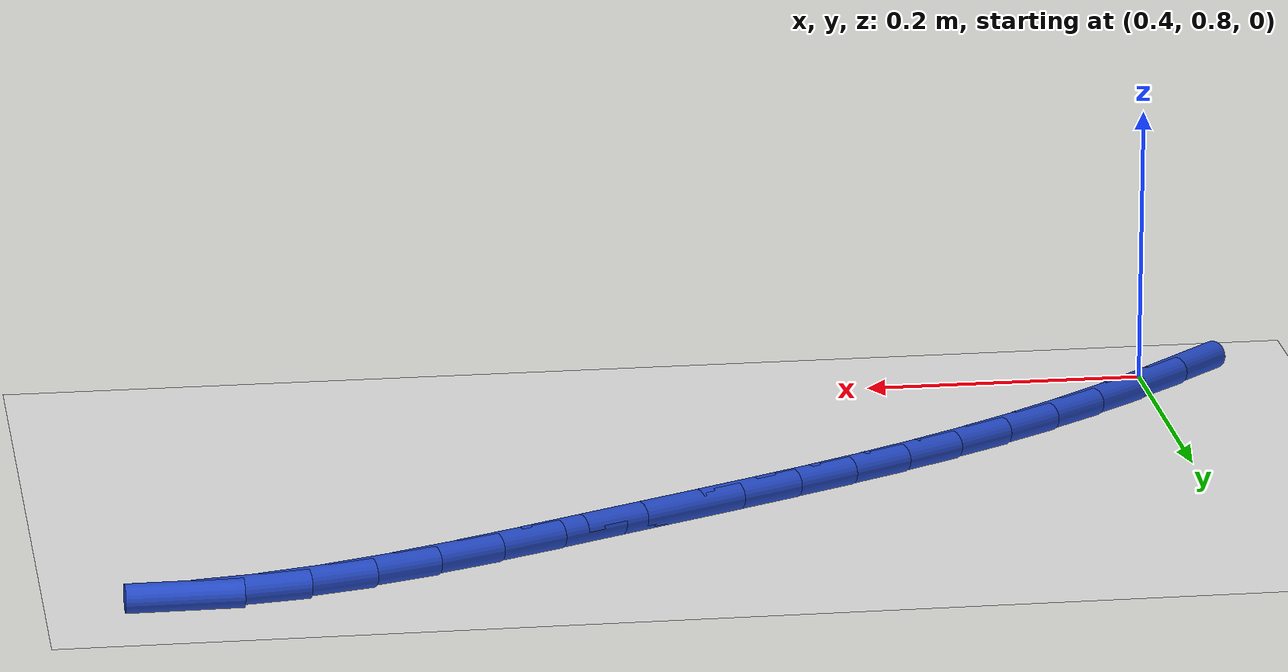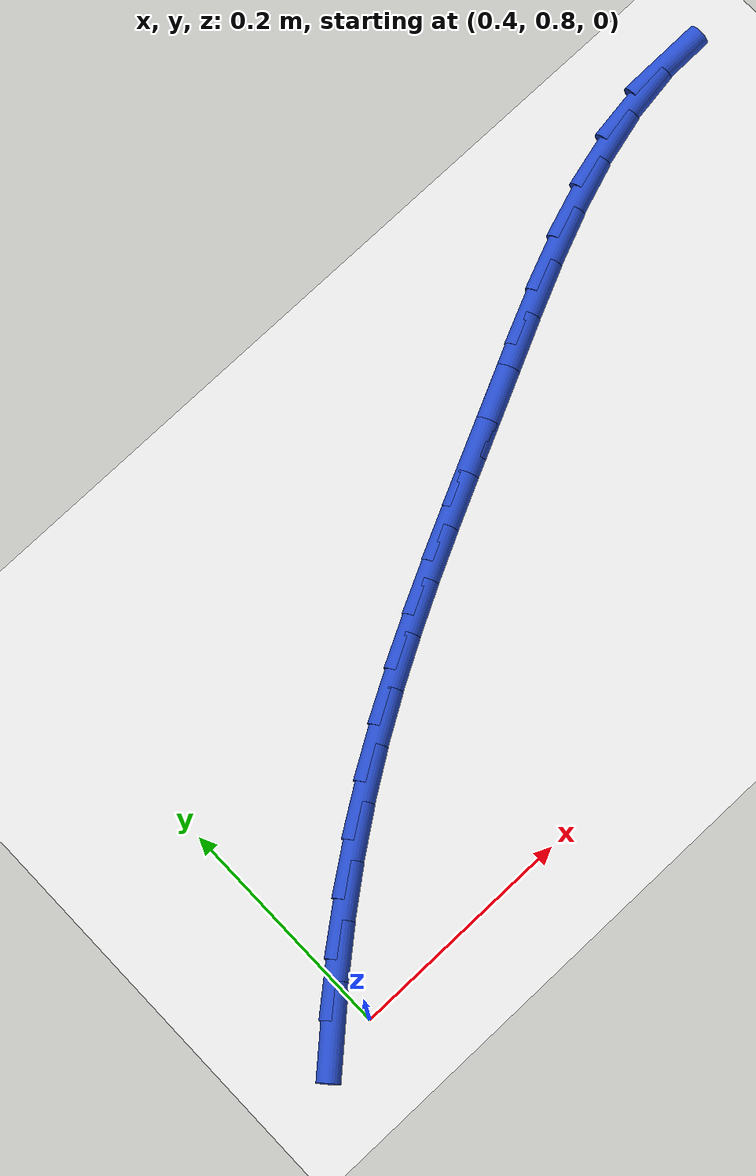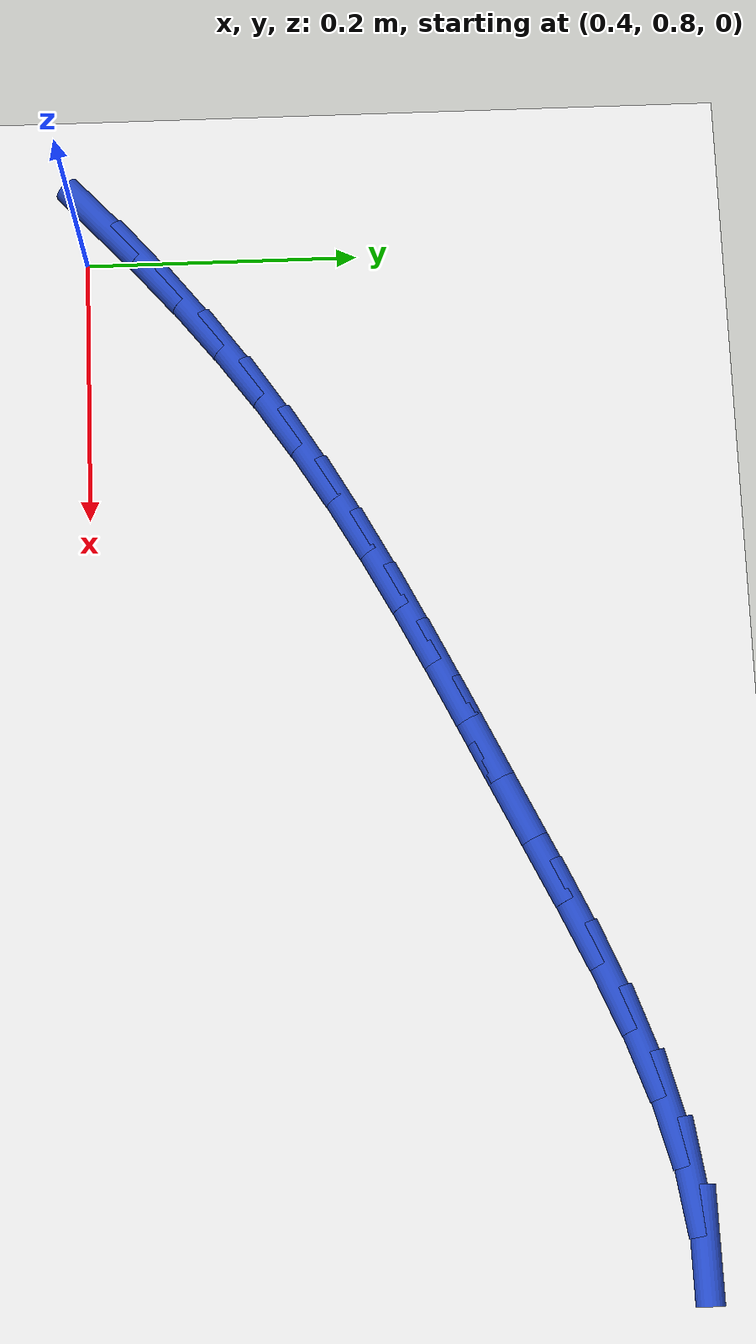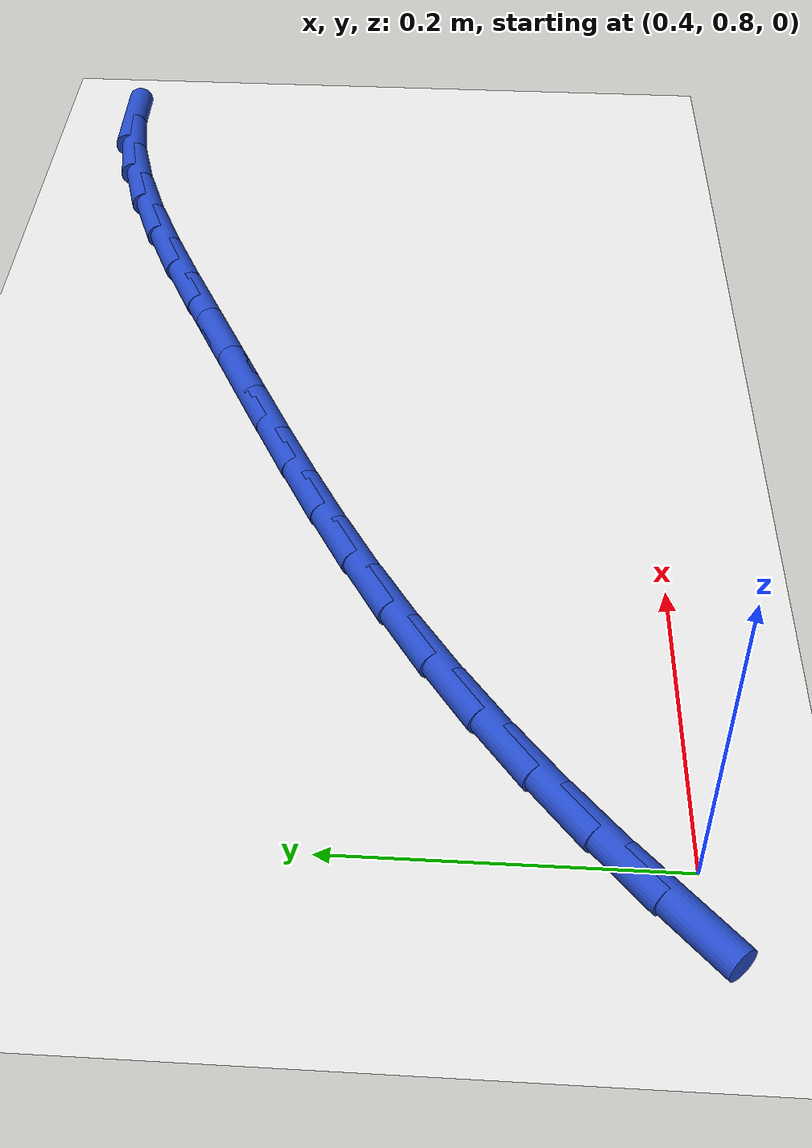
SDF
<sdf version="1.6">
 <world name="default">
  <model name="ground_plane">
   <static>1</static>
   <link name="link">
    <collision name="collision">
     <geometry><plane><normal>0 0 1</normal><size>100 100</size></plane></geometry>
     <surface><friction><ode><mu>100</mu><mu2>50</mu2></ode></friction></surface>
    </collision>
    <visual name="visual">
     <cast_shadows>0</cast_shadows>
     <geometry><plane><normal>0 0 1</normal><size>100 100</size></plane></geometry>
     <material>
      <script><uri>file://media/materials/scripts/gazebo.material</uri><name>Gazebo/WhiteGlow</name></script>
     </material>
    </visual>
   </link>
  </model>
  <model name="line">
   <link name="link_19">
    <pose>0.37127581497059814 0.8124996328618164 0.01 0 1.57 0.7407750922744352</pose>
    <collision name="collision">
     <geometry><cylinder><radius>0.01</radius><length>0.08</length></cylinder></geometry>
    </collision>
    <visual name="visual">
     <material>
      <script><name>Gazebo/Blue</name><uri>file://media/materials/scripts/gazebo.material</uri></script>
     </material>
     <geometry><cylinder><radius>0.01</radius><length>0.08</length></cylinder></geometry>
    </visual>
   </link>
   <link name="link_20">
    <pose>0.40690317219990163 0.8450812733057942 0.01 0 1.57 0.7024940433238107</pose>
    <collision name="collision">
     <geometry><cylinder><radius>0.01</radius><length>0.08</length></cylinder></geometry>
    </collision>
    <visual name="visual">
     <material>
      <script><name>Gazebo/Blue</name><uri>file://media/materials/scripts/gazebo.material</uri></script>
     </material>
     <geometry><cylinder><radius>0.01</radius><length>0.08</length></cylinder></geometry>
    </visual>
   </link>
   <link name="link_21">
    <pose>0.4436147355936613 0.8761598440046221 0.01 0 1.57 0.6638766824531006</pose>
    <collision name="collision">
     <geometry><cylinder><radius>0.01</radius><length>0.08</length></cylinder></geometry>
    </collision>
    <visual name="visual">
     <material>
      <script><name>Gazebo/Blue</name><uri>file://media/materials/scripts/gazebo.material</uri></script>
     </material>
     <geometry><cylinder><radius>0.01</radius><length>0.08</length></cylinder></geometry>
    </visual>
   </link>
   <link name="link_22">
    <pose>0.48133294424189677 0.9056681356951632 0.01 0 1.57 0.6247852604363164</pose>
    <collision name="collision">
     <geometry><cylinder><radius>0.01</radius><length>0.08</length></cylinder></geometry>
    </collision>
    <visual name="visual">
     <material>
      <script><name>Gazebo/Blue</name><uri>file://media/materials/scripts/gazebo.material</uri></script>
     </material>
     <geometry><cylinder><radius>0.01</radius><length>0.08</length></cylinder></geometry>
    </visual>
   </link>
   <link name="link_23">
    <pose>0.5199802372346274 0.933538939114281 0.01 0 1.57 0.5850797112424139</pose>
    <collision name="collision">
     <geometry><cylinder><radius>0.01</radius><length>0.08</length></cylinder></geometry>
    </collision>
    <visual name="visual">
     <material>
      <script><name>Gazebo/Blue</name><uri>file://media/materials/scripts/gazebo.material</uri></script>
     </material>
     <geometry><cylinder><radius>0.01</radius><length>0.08</length></cylinder></geometry>
    </visual>
   </link>
   <link name="link_24">
    <pose>0.559479053661873 0.9597050449988384 0.01 0 1.57 0.5456485657736976</pose>
    <collision name="collision">
     <geometry><cylinder><radius>0.01</radius><length>0.08</length></cylinder></geometry>
    </collision>
    <visual name="visual">
     <material>
      <script><name>Gazebo/Blue</name><uri>file://media/materials/scripts/gazebo.material</uri></script>
     </material>
     <geometry><cylinder><radius>0.01</radius><length>0.08</length></cylinder></geometry>
    </visual>
   </link>
   <link name="link_25">
    <pose>0.5997583481529367 0.984159973234796 0.01 0 1.57 0.511471368178422</pose>
    <collision name="collision">
     <geometry><cylinder><radius>0.01</radius><length>0.08</length></cylinder></geometry>
    </collision>
    <visual name="visual">
     <material>
      <script><name>Gazebo/Blue</name><uri>file://media/materials/scripts/gazebo.material</uri></script>
     </material>
     <geometry><cylinder><radius>0.01</radius><length>0.08</length></cylinder></geometry>
    </visual>
   </link>
   <link name="link_26">
    <pose>0.640777828214574 1.007183880930092 0.01 0 1.57 0.4843877825300081</pose>
    <collision name="collision">
     <geometry><cylinder><radius>0.01</radius><length>0.08</length></cylinder></geometry>
    </collision>
    <visual name="visual">
     <material>
      <script><name>Gazebo/Blue</name><uri>file://media/materials/scripts/gazebo.material</uri></script>
     </material>
     <geometry><cylinder><radius>0.01</radius><length>0.08</length></cylinder></geometry>
    </visual>
   </link>
   <link name="link_27">
    <pose>0.6825062659357573 1.029141413113151 0.01 0 1.57 0.464641862648612</pose>
    <collision name="collision">
     <geometry><cylinder><radius>0.01</radius><length>0.08</length></cylinder></geometry>
    </collision>
    <visual name="visual">
     <material>
      <script><name>Gazebo/Blue</name><uri>file://media/materials/scripts/gazebo.material</uri></script>
     </material>
     <geometry><cylinder><radius>0.01</radius><length>0.08</length></cylinder></geometry>
    </visual>
   </link>
   <link name="link_28">
    <pose>0.7249124346951709 1.0503972268333757 0.01 0 1.57 0.4522939385339467</pose>
    <collision name="collision">
     <geometry><cylinder><radius>0.01</radius><length>0.08</length></cylinder></geometry>
    </collision>
    <visual name="visual">
     <material>
      <script><name>Gazebo/Blue</name><uri>file://media/materials/scripts/gazebo.material</uri></script>
     </material>
     <geometry><cylinder><radius>0.01</radius><length>0.08</length></cylinder></geometry>
    </visual>
   </link>
   <link name="link_29">
    <pose>0.7679651078715 1.0713159791401672 0.01 0 1.57 0.44725437687629693</pose>
    <collision name="collision">
     <geometry><cylinder><radius>0.01</radius><length>0.08</length></cylinder></geometry>
    </collision>
    <visual name="visual">
     <material>
      <script><name>Gazebo/Blue</name><uri>file://media/materials/scripts/gazebo.material</uri></script>
     </material>
     <geometry><cylinder><radius>0.01</radius><length>0.08</length></cylinder></geometry>
    </visual>
   </link>
   <link name="link_30">
    <pose>0.8116330588434293 1.0922623270829284 0.01 0 1.57 0.44919323965143126</pose>
    <collision name="collision">
     <geometry><cylinder><radius>0.01</radius><length>0.08</length></cylinder></geometry>
    </collision>
    <visual name="visual">
     <material>
      <script><name>Gazebo/Blue</name><uri>file://media/materials/scripts/gazebo.material</uri></script>
     </material>
     <geometry><cylinder><radius>0.01</radius><length>0.08</length></cylinder></geometry>
    </visual>
   </link>
   <link name="link_31">
    <pose>0.8558846248289208 1.113594256516092 0.01 0 1.57 0.44895959401500124</pose>
    <collision name="collision">
     <geometry><cylinder><radius>0.01</radius><length>0.08</length></cylinder></geometry>
    </collision>
    <visual name="visual">
     <material>
      <script><name>Gazebo/Blue</name><uri>file://media/materials/scripts/gazebo.material</uri></script>
     </material>
     <geometry><cylinder><radius>0.01</radius><length>0.08</length></cylinder></geometry>
    </visual>
   </link>
   <link name="link_32">
    <pose>0.9006550386156962 1.1351634121748793 0.01 0 1.57 0.43164333140419925</pose>
    <collision name="collision">
     <geometry><cylinder><radius>0.01</radius><length>0.08</length></cylinder></geometry>
    </collision>
    <visual name="visual">
     <material>
      <script><name>Gazebo/Blue</name><uri>file://media/materials/scripts/gazebo.material</uri></script>
     </material>
     <geometry><cylinder><radius>0.01</radius><length>0.08</length></cylinder></geometry>
    </visual>
   </link>
   <link name="link_33">
    <pose>0.9458237781266914 1.155968653217696 0.01 0 1.57 0.39524928359702854</pose>
    <collision name="collision">
     <geometry><cylinder><radius>0.01</radius><length>0.08</length></cylinder></geometry>
    </collision>
    <visual name="visual">
     <material>
      <script><name>Gazebo/Blue</name><uri>file://media/materials/scripts/gazebo.material</uri></script>
     </material>
     <geometry><cylinder><radius>0.01</radius><length>0.08</length></cylinder></geometry>
    </visual>
   </link>
   <link name="link_34">
    <pose>0.9912649654547276 1.1749269199481416 0.01 0 1.57 0.3380912448658627</pose>
    <collision name="collision">
     <geometry><cylinder><radius>0.01</radius><length>0.08</length></cylinder></geometry>
    </collision>
    <visual name="visual">
     <material>
      <script><name>Gazebo/Blue</name><uri>file://media/materials/scripts/gazebo.material</uri></script>
     </material>
     <geometry><cylinder><radius>0.01</radius><length>0.08</length></cylinder></geometry>
    </visual>
   </link>
   <link name="link_35">
    <pose>1.0368527226926265 1.1909551526698154 0.01 0 1.57 0.2575885385305117</pose>
    <collision name="collision">
     <geometry><cylinder><radius>0.01</radius><length>0.08</length></cylinder></geometry>
    </collision>
    <visual name="visual">
     <material>
      <script><name>Gazebo/Blue</name><uri>file://media/materials/scripts/gazebo.material</uri></script>
     </material>
     <geometry><cylinder><radius>0.01</radius><length>0.08</length></cylinder></geometry>
    </visual>
   </link>
   <link name="link_36">
    <pose>1.0824611719332091 1.2029702916863176 0.01 0 1.57 0.1508988379513325</pose>
    <collision name="collision">
     <geometry><cylinder><radius>0.01</radius><length>0.08</length></cylinder></geometry>
    </collision>
    <visual name="visual">
     <material>
      <script><name>Gazebo/Blue</name><uri>file://media/materials/scripts/gazebo.material</uri></script>
     </material>
     <geometry><cylinder><radius>0.01</radius><length>0.08</length></cylinder></geometry>
    </visual>
   </link>
   <link name="link_37">
    <pose>1.127964435269297 1.2098892773012475 0.01 0 1.57 0.01643444134484584</pose>
    <collision name="collision">
     <geometry><cylinder><radius>0.01</radius><length>0.08</length></cylinder></geometry>
    </collision>
    <visual name="visual">
     <material>
      <script><name>Gazebo/Blue</name><uri>file://media/materials/scripts/gazebo.material</uri></script>
     </material>
     <geometry><cylinder><radius>0.01</radius><length>0.08</length></cylinder></geometry>
    </visual>
   </link>
  </model>
 </world>
</sdf>
